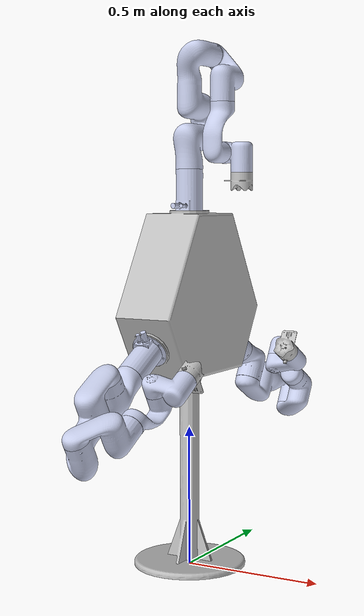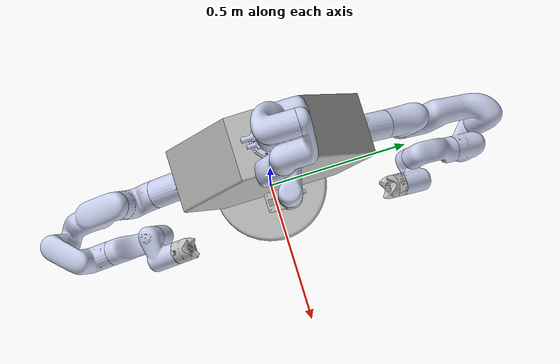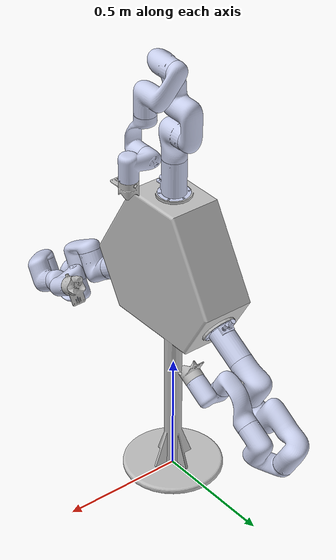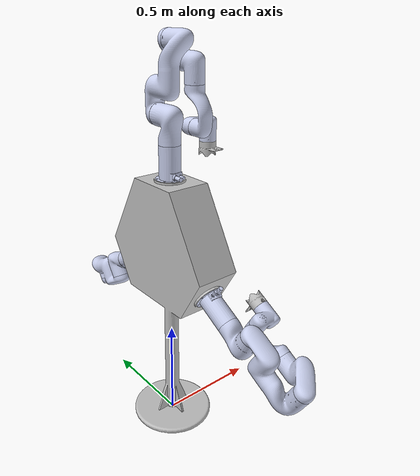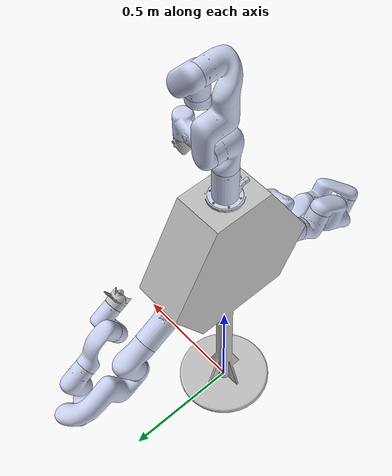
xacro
<?xml version="1.0" encoding="utf-8"?>

<robot name="fullbot" xmlns:xacro="http://www.ros.org/wiki/xacro">

  <gazebo>
    <plugin name="gazebo_ros_control" filename="libgazebo_ros_control.so">
      <robotNamespace>/</robotNamespace>
      <robotSimType>gazebo_ros_control/DefaultRobotHWSim</robotSimType>
    </plugin>
    <plugin name="fullbot_wheel_controller" filename="libgazebo_ros_planar_move.so">
      <commandTopic>cmd_vel</commandTopic>
      <odometryTopic>odom</odometryTopic>
      <odometryFrame>odom</odometryFrame>
      <odometryRate>30.0</odometryRate>
      <robotBaseFrame>chassis</robotBaseFrame>
    </plugin>
  </gazebo>

  <link
    name="base_link">
    <inertial>
      <origin
        xyz="-0.00281805059644907 0.00130056841626421 0.90172021367832"
        rpy="0 0 0" />
      <mass
        value="70.8376486973613" />
      <inertia
        ixx="3.5026387525153"
        ixy="-3.09893754296513E-10"
        ixz="0.000336204370109459"
        iyy="2.07462491441494"
        iyz="-7.77501017045212E-10"
        izz="1.81501039729664" />
    </inertial>
    <visual>
      <origin
        xyz="0 0 0"
        rpy="0 0 0" />
      <geometry>
        <mesh
          filename="package://fullbot/meshes/base_link.STL" />
      </geometry>
      <material
        name="">
        <color
          rgba="0.752941176470588 0.752941176470588 0.752941176470588 1" />
      </material>
    </visual>
    <collision>
      <origin
        xyz="0 0 0"
        rpy="0 0 0" />
      <geometry>
        <mesh
          filename="package://fullbot/meshes/base_link.STL" />
      </geometry>
    </collision>
  </link>
  <link
    name="link0_up">
    <inertial>
      <origin
        xyz="0.0015235 -9.2098E-05 0.072171"
        rpy="0 0 0" />
      <mass
        value="1.1501" />
      <inertia
        ixx="0.003053"
        ixy="7.4972E-06"
        ixz="7.8812E-05"
        iyy="0.003154"
        iyz="-4.773E-06"
        izz="0.001496" />
    </inertial>
    <visual>
      <origin
        xyz="0 0 0"
        rpy="0 0 0" />
      <geometry>
        <mesh
          filename="package://fullbot/meshes/link0_up.STL" />
      </geometry>
      <material
        name="">
        <color
          rgba="0.79216 0.81961 0.93333 1" />
      </material>
    </visual>
    <collision>
      <origin
        xyz="0 0 0"
        rpy="0 0 0" />
      <geometry>
        <mesh
          filename="package://fullbot/meshes/link0_up.STL" />
      </geometry>
    </collision>
  </link>
  <joint
    name="joint0_up"
    type="fixed">
    <origin
      xyz="0 0 1.2629"
      rpy="0 0 -1.5708" />
    <parent
      link="base_link" />
    <child
      link="link0_up" />
    <axis
      xyz="0 0 0" />
  </joint>
  <link
    name="link1_up">
    <inertial>
      <origin
        xyz="-0.0063511653118558 0.000207381647010473 0.0933560245185359"
        rpy="0 0 0" />
      <mass
        value="1.3256364074878" />
      <inertia
        ixx="0.00337516344067471"
        ixy="2.91047495398255E-06"
        ixz="0.000390263321422471"
        iyy="0.0039707875530841"
        iyz="-7.74618991821578E-06"
        izz="0.00211705553045749" />
    </inertial>
    <visual>
      <origin
        xyz="0 0 0"
        rpy="0 0 0" />
      <geometry>
        <mesh
          filename="package://fullbot/meshes/link1_up.STL" />
      </geometry>
      <material
        name="">
        <color
          rgba="0.792156862745098 0.819607843137255 0.933333333333333 1" />
      </material>
    </visual>
    <collision>
      <origin
        xyz="0 0 0"
        rpy="0 0 0" />
      <geometry>
        <mesh
          filename="package://fullbot/meshes/link1_up.STL" />
      </geometry>
    </collision>
  </link>
  <joint
    name="joint1_up"
    type="revolute">
    <origin
      xyz="0 0 0.1448"
      rpy="0 0 0" />
    <parent
      link="link0_up" />
    <child
      link="link1_up" />
    <axis
      xyz="0 0 1" />
    <limit
      lower="-6.28"
      upper="6.28"
      effort="20"
      velocity="1.5" />
  </joint>
  <link
    name="link2_up">
    <inertial>
      <origin
        xyz="-0.164334922175456 -0.0131391380189071 -0.0386527377791693"
        rpy="0 0 0" />
      <mass
        value="2.69348731441247" />
      <inertia
        ixx="0.00426310623774934"
        ixy="-0.00277535500543395"
        ixz="-0.000798338261530704"
        iyy="0.0150045970572789"
        iyz="0.000100430735697421"
        izz="0.0156052703291197" />
    </inertial>
    <visual>
      <origin
        xyz="0 0 0"
        rpy="0 0 0" />
      <geometry>
        <mesh
          filename="package://fullbot/meshes/link2_up.STL" />
      </geometry>
      <material
        name="">
        <color
          rgba="0.792156862745098 0.819607843137255 0.933333333333333 1" />
      </material>
    </visual>
    <collision>
      <origin
        xyz="0 0 0"
        rpy="0 0 0" />
      <geometry>
        <mesh
          filename="package://fullbot/meshes/link2_up.STL" />
      </geometry>
    </collision>
  </link>
  <joint
    name="joint2_up"
    type="revolute">
    <origin
      xyz="-0.065295 0.00034902 0.122"
      rpy="3.1416 1.5708 0" />
    <parent
      link="link1_up" />
    <child
      link="link2_up" />
    <axis
      xyz="0 0 1" />
    <limit
      lower="-2.05"
      upper="2.09"
      effort="20"
      velocity="1.5" />
  </joint>
  <link
    name="link3_up">
    <inertial>
      <origin
        xyz="0.0790017026576337 -0.0622013013556818 -0.0189186889395293"
        rpy="0 0 0" />
      <mass
        value="1.30253510106472" />
      <inertia
        ixx="0.00393747848651755"
        ixy="0.00136510222638933"
        ixz="0.00159608028913008"
        iyy="0.00525344165407256"
        iyz="-0.000920518752882782"
        izz="0.00455361194720345" />
    </inertial>
    <visual>
      <origin
        xyz="0 0 0"
        rpy="0 0 0" />
      <geometry>
        <mesh
          filename="package://fullbot/meshes/link3_up.STL" />
      </geometry>
      <material
        name="">
        <color
          rgba="0.792156862745098 0.819607843137255 0.933333333333333 1" />
      </material>
    </visual>
    <collision>
      <origin
        xyz="0 0 0"
        rpy="0 0 0" />
      <geometry>
        <mesh
          filename="package://fullbot/meshes/link3_up.STL" />
      </geometry>
    </collision>
  </link>
  <joint
    name="joint3_up"
    type="revolute">
    <origin
      xyz="-0.2859 -0.053313 -0.0083026"
      rpy="0 0 0" />
    <parent
      link="link2_up" />
    <child
      link="link3_up" />
    <axis
      xyz="0 0 1" />
    <limit
      lower="-3.92"
      upper="0.19"
      effort="20"
      velocity="1.5" />
  </joint>
  <link
    name="link4_up">
    <inertial>
      <origin
        xyz="0.0321807687354634 -0.00025917554824062 0.107627187331175"
        rpy="0 0 0" />
      <mass
        value="0.789560351493029" />
      <inertia
        ixx="0.00404949168648296"
        ixy="-3.36598707087041E-06"
        ixz="-0.00099079876639351"
        iyy="0.00449572325717299"
        iyz="-2.2965154074987E-06"
        izz="0.00105175547833875" />
    </inertial>
    <visual>
      <origin
        xyz="0 0 0"
        rpy="0 0 0" />
      <geometry>
        <mesh
          filename="package://fullbot/meshes/link4_up.STL" />
      </geometry>
      <material
        name="">
        <color
          rgba="0.792156862745098 0.819607843137255 0.933333333333333 1" />
      </material>
    </visual>
    <collision>
      <origin
        xyz="0 0 0"
        rpy="0 0 0" />
      <geometry>
        <mesh
          filename="package://fullbot/meshes/link4_up.STL" />
      </geometry>
    </collision>
  </link>
  <joint
    name="joint4_up"
    type="revolute">
    <origin
      xyz="0.15917 -0.077751 -0.057495"
      rpy="0 1.5708 0" />
    <parent
      link="link3_up" />
    <child
      link="link4_up" />
    <axis
      xyz="0 0 1" />
    <limit
      lower="-6.28"
      upper="6.28"
      effort="20"
      velocity="1.5" />
  </joint>
  <link
    name="link5_up">
    <inertial>
      <origin
        xyz="0.0467464429721704 -0.00940639676845523 -0.0231013060407902"
        rpy="0 0 0" />
      <mass
        value="0.723051769580643" />
      <inertia
        ixx="0.000793027726972335"
        ixy="0.000197964210793357"
        ixz="-0.000254464226983087"
        iyy="0.00148592083068407"
        iyz="5.97819367646225E-05"
        izz="0.00164704279225573" />
    </inertial>
    <visual>
      <origin
        xyz="0 0 0"
        rpy="0 0 0" />
      <geometry>
        <mesh
          filename="package://fullbot/meshes/link5_up.STL" />
      </geometry>
      <material
        name="">
        <color
          rgba="0.792156862745098 0.819607843137255 0.933333333333333 1" />
      </material>
    </visual>
    <collision>
      <origin
        xyz="0 0 0"
        rpy="0 0 0" />
      <geometry>
        <mesh
          filename="package://fullbot/meshes/link5_up.STL" />
      </geometry>
    </collision>
  </link>
  <joint
    name="joint5_up"
    type="revolute">
    <origin
      xyz="0.014748 -0.00043612 0.183"
      rpy="-1.5708 0 -1.5708" />
    <parent
      link="link4_up" />
    <child
      link="link5_up" />
    <axis
      xyz="0 0 -1" />
    <limit
      lower="-1.69"
      upper="3.14"
      effort="20"
      velocity="1.5" />
  </joint>
  <link
    name="link6_up">
    <inertial>
      <origin
        xyz="-0.00127764071195329 7.89251108912481E-09 0.0348924628163476"
        rpy="0 0 0" />
      <mass
        value="0.240703496519078" />
      <inertia
        ixx="0.000111819933042724"
        ixy="1.06441768274538E-12"
        ixz="3.17569406177314E-07"
        iyy="0.000124185578330655"
        iyz="-2.44652552338508E-11"
        izz="0.000199479046718238" />
    </inertial>
    <visual>
      <origin
        xyz="0 0 0"
        rpy="0 0 0" />
      <geometry>
        <mesh
          filename="package://fullbot/meshes/link6_up.STL" />
      </geometry>
      <material
        name="">
        <color
          rgba="0.752941176470588 0.752941176470588 0.752941176470588 1" />
      </material>
    </visual>
    <collision>
      <origin
        xyz="0 0 0"
        rpy="0 0 0" />
      <geometry>
        <mesh
          filename="package://fullbot/meshes/link6_up.STL" />
      </geometry>
    </collision>
  </link>
  <joint
    name="joint6_up"
    type="revolute">
    <origin
      xyz="0.075873 -0.058524 -0.014339"
      rpy="1.5708 1.5708 0" />
    <parent
      link="link5_up" />
    <child
      link="link6_up" />
    <axis
      xyz="0 0 1" />
    <limit
      lower="-6.28"
      upper="6.28"
      effort="20"
      velocity="1.5" />
  </joint>
  <link
    name="link0_right">
    <inertial>
      <origin
        xyz="0.00152352214909268 -9.20950558262901E-05 0.0721709833940649"
        rpy="0 0 0" />
      <mass
        value="1.15012354839417" />
      <inertia
        ixx="0.00305297729491234"
        ixy="7.49727624531085E-06"
        ixz="7.8811653611199E-05"
        iyy="0.00315399502526908"
        iyz="-4.77312392810153E-06"
        izz="0.00149595458411752" />
    </inertial>
    <visual>
      <origin
        xyz="0 0 0"
        rpy="0 0 0" />
      <geometry>
        <mesh
          filename="package://fullbot/meshes/link0_right.STL" />
      </geometry>
      <material
        name="">
        <color
          rgba="0.792156862745098 0.819607843137255 0.933333333333333 1" />
      </material>
    </visual>
    <collision>
      <origin
        xyz="0 0 0"
        rpy="0 0 0" />
      <geometry>
        <mesh
          filename="package://fullbot/meshes/link0_right.STL" />
      </geometry>
    </collision>
  </link>
  <joint
    name="joint0_right"
    type="fixed">
    <origin
      xyz="0 0.262500000000021 0.808253175473089"
      rpy="3.14159265358979 -1.04719755119661 1.5707963267949" />
    <parent
      link="base_link" />
    <child
      link="link0_right" />
    <axis
      xyz="0 0 0" />
  </joint>
  <link
    name="link1_right">
    <inertial>
      <origin
        xyz="-0.00635141038711484 0.000207534921337451 0.0933560223181532"
        rpy="0 0 0" />
      <mass
        value="1.32562534805268" />
      <inertia
        ixx="0.0033751569034854"
        ixy="2.90184699872975E-06"
        ixz="0.000390274835452127"
        iyy="0.00397076269428928"
        iyz="-7.74687080996628E-06"
        izz="0.00211702052844463" />
    </inertial>
    <visual>
      <origin
        xyz="0 0 0"
        rpy="0 0 0" />
      <geometry>
        <mesh
          filename="package://fullbot/meshes/link1_right.STL" />
      </geometry>
      <material
        name="">
        <color
          rgba="0.792156862745098 0.819607843137255 0.933333333333333 1" />
      </material>
    </visual>
    <collision>
      <origin
        xyz="0 0 0"
        rpy="0 0 0" />
      <geometry>
        <mesh
          filename="package://fullbot/meshes/link1_right.STL" />
      </geometry>
    </collision>
  </link>
  <joint
    name="joint1_right"
    type="revolute">
    <origin
      xyz="0 0 0.1448"
      rpy="0 0 0" />
    <parent
      link="link0_right" />
    <child
      link="link1_right" />
    <axis
      xyz="0 0 1" />
    <limit
      lower="-6.28"
      upper="6.28"
      effort="20"
      velocity="1.5" />
  </joint>
  <link
    name="link2_right">
    <inertial>
      <origin
        xyz="-0.164337985161048 -0.0131393685703512 -0.0386544729786384"
        rpy="0 0 0" />
      <mass
        value="2.69362838096021" />
      <inertia
        ixx="0.00426335070454304"
        ixy="-0.00277555236003664"
        ixz="-0.000798532633310513"
        iyy="0.0150051670245593"
        iyz="0.000100373269271408"
        izz="0.0156058685529561" />
    </inertial>
    <visual>
      <origin
        xyz="0 0 0"
        rpy="0 0 0" />
      <geometry>
        <mesh
          filename="package://fullbot/meshes/link2_right.STL" />
      </geometry>
      <material
        name="">
        <color
          rgba="0.792156862745098 0.819607843137255 0.933333333333333 1" />
      </material>
    </visual>
    <collision>
      <origin
        xyz="0 0 0"
        rpy="0 0 0" />
      <geometry>
        <mesh
          filename="package://fullbot/meshes/link2_right.STL" />
      </geometry>
    </collision>
  </link>
  <joint
    name="joint2_right"
    type="revolute">
    <origin
      xyz="-0.065295 0.00034902 0.122"
      rpy="3.1416 1.5708 0" />
    <parent
      link="link1_right" />
    <child
      link="link2_right" />
    <axis
      xyz="0 0 1" />
    <limit
      lower="-2.05"
      upper="2.09"
      effort="20"
      velocity="1.5" />
  </joint>
  <link
    name="link3_right">
    <inertial>
      <origin
        xyz="0.0790018467474999 -0.0622013835327156 -0.0189188081086681"
        rpy="0 0 0" />
      <mass
        value="1.30253291173427" />
      <inertia
        ixx="0.00393746472517653"
        ixy="0.00136509457478538"
        ixz="0.00159605824936344"
        iyy="0.00525341640271265"
        iyz="-0.000920517395001331"
        izz="0.00455360703799699" />
    </inertial>
    <visual>
      <origin
        xyz="0 0 0"
        rpy="0 0 0" />
      <geometry>
        <mesh
          filename="package://fullbot/meshes/link3_right.STL" />
      </geometry>
      <material
        name="">
        <color
          rgba="0.792156862745098 0.819607843137255 0.933333333333333 1" />
      </material>
    </visual>
    <collision>
      <origin
        xyz="0 0 0"
        rpy="0 0 0" />
      <geometry>
        <mesh
          filename="package://fullbot/meshes/link3_right.STL" />
      </geometry>
    </collision>
  </link>
  <joint
    name="joint3_right"
    type="revolute">
    <origin
      xyz="-0.2859 -0.053313 -0.0083026"
      rpy="0 0 0" />
    <parent
      link="link2_right" />
    <child
      link="link3_right" />
    <axis
      xyz="0 0 1" />
    <limit
      lower="-3.92"
      upper="0.19"
      effort="20"
      velocity="1.5" />
  </joint>
  <link
    name="link4_right">
    <inertial>
      <origin
        xyz="0.0321808159995989 -0.000259192543237335 0.107627165980801"
        rpy="0 0 0" />
      <mass
        value="0.78956108124552" />
      <inertia
        ixx="0.00404951021883878"
        ixy="-3.3674543336446E-06"
        ixz="-0.000990810460485379"
        iyy="0.00449575360734708"
        iyz="-2.29158571071361E-06"
        izz="0.00105176344238809" />
    </inertial>
    <visual>
      <origin
        xyz="0 0 0"
        rpy="0 0 0" />
      <geometry>
        <mesh
          filename="package://fullbot/meshes/link4_right.STL" />
      </geometry>
      <material
        name="">
        <color
          rgba="0.792156862745098 0.819607843137255 0.933333333333333 1" />
      </material>
    </visual>
    <collision>
      <origin
        xyz="0 0 0"
        rpy="0 0 0" />
      <geometry>
        <mesh
          filename="package://fullbot/meshes/link4_right.STL" />
      </geometry>
    </collision>
  </link>
  <joint
    name="joint4_right"
    type="revolute">
    <origin
      xyz="0.15917 -0.077751 -0.057495"
      rpy="0 1.5708 0" />
    <parent
      link="link3_right" />
    <child
      link="link4_right" />
    <axis
      xyz="0 0 1" />
    <limit
      lower="-6.28"
      upper="6.28"
      effort="20"
      velocity="1.5" />
  </joint>
  <link
    name="link5_right">
    <inertial>
      <origin
        xyz="0.0467464712720566 -0.00940636520692905 -0.0231013135933531"
        rpy="0 0 0" />
      <mass
        value="0.723053236781345" />
      <inertia
        ixx="0.000793029275563745"
        ixy="0.00019796746165297"
        ixz="-0.000254450161449136"
        iyy="0.00148592048173132"
        iyz="5.97839010606921E-05"
        izz="0.00164706260101592" />
    </inertial>
    <visual>
      <origin
        xyz="0 0 0"
        rpy="0 0 0" />
      <geometry>
        <mesh
          filename="package://fullbot/meshes/link5_right.STL" />
      </geometry>
      <material
        name="">
        <color
          rgba="0.792156862745098 0.819607843137255 0.933333333333333 1" />
      </material>
    </visual>
    <collision>
      <origin
        xyz="0 0 0"
        rpy="0 0 0" />
      <geometry>
        <mesh
          filename="package://fullbot/meshes/link5_right.STL" />
      </geometry>
    </collision>
  </link>
  <joint
    name="joint5_right"
    type="revolute">
    <origin
      xyz="0.014748 -0.00043612 0.183"
      rpy="-1.5708 0 -1.5708" />
    <parent
      link="link4_right" />
    <child
      link="link5_right" />
    <axis
      xyz="0 0 -1" />
    <limit
      lower="-1.69"
      upper="3.14"
      effort="20"
      velocity="1.5" />
  </joint>
  <link
    name="link6_right">
    <inertial>
      <origin
        xyz="-0.00127764709875855 8.16060202746272E-09 0.0348924616310335"
        rpy="0 0 0" />
      <mass
        value="0.240703470193428" />
      <inertia
        ixx="0.000111819928166232"
        ixy="-8.5304557524986E-12"
        ixz="3.17582815697291E-07"
        iyy="0.000124185592316452"
        iyz="-2.14504240040412E-11"
        izz="0.000199479022123197" />
    </inertial>
    <visual>
      <origin
        xyz="0 0 0"
        rpy="0 0 0" />
      <geometry>
        <mesh
          filename="package://fullbot/meshes/link6_right.STL" />
      </geometry>
      <material
        name="">
        <color
          rgba="0.752941176470588 0.752941176470588 0.752941176470588 1" />
      </material>
    </visual>
    <collision>
      <origin
        xyz="0 0 0"
        rpy="0 0 0" />
      <geometry>
        <mesh
          filename="package://fullbot/meshes/link6_right.STL" />
      </geometry>
    </collision>
  </link>
  <joint
    name="joint6_right"
    type="revolute">
    <origin
      xyz="0.075873 -0.058524 -0.014339"
      rpy="1.5708 1.5708 0" />
    <parent
      link="link5_right" />
    <child
      link="link6_right" />
    <axis
      xyz="0 0 1" />
    <limit
      lower="-6.28"
      upper="6.28"
      effort="20"
      velocity="1.5" />
  </joint>
  <link
    name="link0_left">
    <inertial>
      <origin
        xyz="-0.00152352228347186 9.20948264806331E-05 0.0721709830015318"
        rpy="0 0 0" />
      <mass
        value="1.15012353923379" />
      <inertia
        ixx="0.00305297726264137"
        ixy="7.49728091574788E-06"
        ixz="-7.88116451994899E-05"
        iyy="0.00315399499788005"
        iyz="4.77313793260606E-06"
        izz="0.00149595457246201" />
    </inertial>
    <visual>
      <origin
        xyz="0 0 0"
        rpy="0 0 0" />
      <geometry>
        <mesh
          filename="package://fullbot/meshes/link0_left.STL" />
      </geometry>
      <material
        name="">
        <color
          rgba="0.792156862745098 0.819607843137255 0.933333333333333 1" />
      </material>
    </visual>
    <collision>
      <origin
        xyz="0 0 0"
        rpy="0 0 0" />
      <geometry>
        <mesh
          filename="package://fullbot/meshes/link0_left.STL" />
      </geometry>
    </collision>
  </link>
  <joint
    name="joint0_left"
    type="fixed">
    <origin
      xyz="0 -0.262500000000018 0.808253175473086"
      rpy="3.14159265358979 1.04719755119659 1.57079632679489" />
    <parent
      link="base_link" />
    <child
      link="link0_left" />
    <axis
      xyz="0 0 0" />
  </joint>
  <link
    name="link1_left">
    <inertial>
      <origin
        xyz="-0.00635132541827643 0.000207433439637812 0.0933560224157137"
        rpy="0 0 0" />
      <mass
        value="1.32563223880842" />
      <inertia
        ixx="0.0033752021374132"
        ixy="2.88747662063124E-06"
        ixz="0.000390243275931501"
        iyy="0.00397075692793722"
        iyz="-7.76736476127417E-06"
        izz="0.0021170422993842" />
    </inertial>
    <visual>
      <origin
        xyz="0 0 0"
        rpy="0 0 0" />
      <geometry>
        <mesh
          filename="package://fullbot/meshes/link1_left.STL" />
      </geometry>
      <material
        name="">
        <color
          rgba="0.792156862745098 0.819607843137255 0.933333333333333 1" />
      </material>
    </visual>
    <collision>
      <origin
        xyz="0 0 0"
        rpy="0 0 0" />
      <geometry>
        <mesh
          filename="package://fullbot/meshes/link1_left.STL" />
      </geometry>
    </collision>
  </link>
  <joint
    name="joint1_left"
    type="revolute">
    <origin
      xyz="0 0 0.1448"
      rpy="0 0 0" />
    <parent
      link="link0_left" />
    <child
      link="link1_left" />
    <axis
      xyz="0 0 1" />
    <limit
      lower="-6.28"
      upper="6.28"
      effort="20"
      velocity="1.5" />
  </joint>
  <link
    name="link2_left">
    <inertial>
      <origin
        xyz="-0.164335653200961 -0.0131391438496397 -0.0386534541310815"
        rpy="0 0 0" />
      <mass
        value="2.693519969393" />
      <inertia
        ixx="0.00426316968491273"
        ixy="-0.00277539275843287"
        ixz="-0.000798412755260659"
        iyy="0.015004913484326"
        iyz="0.000100414305662904"
        izz="0.0156055322063192" />
    </inertial>
    <visual>
      <origin
        xyz="0 0 0"
        rpy="0 0 0" />
      <geometry>
        <mesh
          filename="package://fullbot/meshes/link2_left.STL" />
      </geometry>
      <material
        name="">
        <color
          rgba="0.792156862745098 0.819607843137255 0.933333333333333 1" />
      </material>
    </visual>
    <collision>
      <origin
        xyz="0 0 0"
        rpy="0 0 0" />
      <geometry>
        <mesh
          filename="package://fullbot/meshes/link2_left.STL" />
      </geometry>
    </collision>
  </link>
  <joint
    name="joint2_left"
    type="revolute">
    <origin
      xyz="-0.065295 0.00034902 0.122"
      rpy="3.1416 1.5708 0" />
    <parent
      link="link1_left" />
    <child
      link="link2_left" />
    <axis
      xyz="0 0 1" />
    <limit
      lower="-2.05"
      upper="2.09"
      effort="20"
      velocity="1.5" />
  </joint>
  <link
    name="link3_left">
    <inertial>
      <origin
        xyz="0.0790016512060432 -0.0622011862834298 -0.0189187307620943"
        rpy="0 0 0" />
      <mass
        value="1.30253713018814" />
      <inertia
        ixx="0.00393752557798942"
        ixy="0.00136512084598024"
        ixz="0.00159609045475645"
        iyy="0.00525350026062385"
        iyz="-0.000920532713824777"
        izz="0.00455371583746519" />
    </inertial>
    <visual>
      <origin
        xyz="0 0 0"
        rpy="0 0 0" />
      <geometry>
        <mesh
          filename="package://fullbot/meshes/link3_left.STL" />
      </geometry>
      <material
        name="">
        <color
          rgba="0.792156862745098 0.819607843137255 0.933333333333333 1" />
      </material>
    </visual>
    <collision>
      <origin
        xyz="0 0 0"
        rpy="0 0 0" />
      <geometry>
        <mesh
          filename="package://fullbot/meshes/link3_left.STL" />
      </geometry>
    </collision>
  </link>
  <joint
    name="joint3_left"
    type="revolute">
    <origin
      xyz="-0.2859 -0.053313 -0.0083026"
      rpy="0 0 0" />
    <parent
      link="link2_left" />
    <child
      link="link3_left" />
    <axis
      xyz="0 0 1" />
    <limit
      lower="-3.92"
      upper="0.19"
      effort="20"
      velocity="1.5" />
  </joint>
  <link
    name="link4_left">
    <inertial>
      <origin
        xyz="0.0321813918409148 -0.000259353515606797 0.107627755673519"
        rpy="0 0 0" />
      <mass
        value="0.789550324066767" />
      <inertia
        ixx="0.00404948831293703"
        ixy="-3.37071367934127E-06"
        ixz="-0.000990801773245661"
        iyy="0.00449572527498313"
        iyz="-2.29509968742282E-06"
        izz="0.00105175433912365" />
    </inertial>
    <visual>
      <origin
        xyz="0 0 0"
        rpy="0 0 0" />
      <geometry>
        <mesh
          filename="package://fullbot/meshes/link4_left.STL" />
      </geometry>
      <material
        name="">
        <color
          rgba="0.792156862745098 0.819607843137255 0.933333333333333 1" />
      </material>
    </visual>
    <collision>
      <origin
        xyz="0 0 0"
        rpy="0 0 0" />
      <geometry>
        <mesh
          filename="package://fullbot/meshes/link4_left.STL" />
      </geometry>
    </collision>
  </link>
  <joint
    name="joint4_left"
    type="revolute">
    <origin
      xyz="0.15917 -0.077751 -0.057495"
      rpy="0 1.5708 0" />
    <parent
      link="link3_left" />
    <child
      link="link4_left" />
    <axis
      xyz="0 0 1" />
    <limit
      lower="-6.28"
      upper="6.28"
      effort="20"
      velocity="1.5" />
  </joint>
  <link
    name="link5_left">
    <inertial>
      <origin
        xyz="0.0467460587567171 -0.0094063461555137 -0.0231014499120238"
        rpy="0 0 0" />
      <mass
        value="0.723052791881536" />
      <inertia
        ixx="0.000793040035769921"
        ixy="0.000197992610855098"
        ixz="-0.000254454983145896"
        iyy="0.00148594871876037"
        iyz="5.97820535578688E-05"
        izz="0.00164710089968391" />
    </inertial>
    <visual>
      <origin
        xyz="0 0 0"
        rpy="0 0 0" />
      <geometry>
        <mesh
          filename="package://fullbot/meshes/link5_left.STL" />
      </geometry>
      <material
        name="">
        <color
          rgba="0.792156862745098 0.819607843137255 0.933333333333333 1" />
      </material>
    </visual>
    <collision>
      <origin
        xyz="0 0 0"
        rpy="0 0 0" />
      <geometry>
        <mesh
          filename="package://fullbot/meshes/link5_left.STL" />
      </geometry>
    </collision>
  </link>
  <joint
    name="joint5_left"
    type="revolute">
    <origin
      xyz="0.014748 -0.00043612 0.183"
      rpy="-1.5708 0 -1.5708" />
    <parent
      link="link4_left" />
    <child
      link="link5_left" />
    <axis
      xyz="0 0 -1" />
    <limit
      lower="-1.69"
      upper="3.14"
      effort="20"
      velocity="1.5" />
  </joint>
  <link
    name="link6_left">
    <inertial>
      <origin
        xyz="-0.00127763577348217 7.93220825134888E-09 0.0348924624099836"
        rpy="0 0 0" />
      <mass
        value="0.24070347329952" />
      <inertia
        ixx="0.000111819940943311"
        ixy="-1.15110725036355E-11"
        ixz="3.17554848775727E-07"
        iyy="0.0001241855941227"
        iyz="-3.87077223997555E-11"
        izz="0.00019947903857224" />
    </inertial>
    <visual>
      <origin
        xyz="0 0 0"
        rpy="0 0 0" />
      <geometry>
        <mesh
          filename="package://fullbot/meshes/link6_left.STL" />
      </geometry>
      <material
        name="">
        <color
          rgba="0.752941176470588 0.752941176470588 0.752941176470588 1" />
      </material>
    </visual>
    <collision>
      <origin
        xyz="0 0 0"
        rpy="0 0 0" />
      <geometry>
        <mesh
          filename="package://fullbot/meshes/link6_left.STL" />
      </geometry>
    </collision>
  </link>
  <joint
    name="joint6_left"
    type="revolute">
    <origin
      xyz="0.075873 -0.058524 -0.014339"
      rpy="1.5708 1.5708 0" />
    <parent
      link="link5_left" />
    <child
      link="link6_left" />
    <axis
      xyz="0 0 1" />
    <limit
      lower="-6.28"
      upper="6.28"
      effort="20"
      velocity="1.5" />
  </joint>

    <!-- CHASSIS LINK -->

    <!-- LEFT WHEEL LINK -->

    <!-- RIGHT WHEEL LINK -->

    <!-- CASTER WHEEL LINK -->

  <transmission name="trans1_up">
    <type>transmission_interface/SimpleTransmission</type>
    <joint name="joint1_up">
      <hardwareInterface>hardware_interface/PositionJointInterface</hardwareInterface>
    </joint>
    <actuator name="motor1_up">
      <hardwareInterface>hardware_interface/PositionJointInterface</hardwareInterface>
      <mechanicalReduction>1</mechanicalReduction>
    </actuator>
  </transmission>

  <transmission name="trans2_up">
    <type>transmission_interface/SimpleTransmission</type>
    <joint name="joint2_up">
      <hardwareInterface>hardware_interface/PositionJointInterface</hardwareInterface>
    </joint>
    <actuator name="motor2_up">
      <hardwareInterface>hardware_interface/PositionJointInterface</hardwareInterface>
      <mechanicalReduction>1</mechanicalReduction>
    </actuator>
  </transmission>

  <transmission name="trans3_up">
    <type>transmission_interface/SimpleTransmission</type>
    <joint name="joint3_up">
      <hardwareInterface>hardware_interface/PositionJointInterface</hardwareInterface>
    </joint>
    <actuator name="motor3_up">
      <hardwareInterface>hardware_interface/PositionJointInterface</hardwareInterface>
      <mechanicalReduction>1</mechanicalReduction>
    </actuator>
  </transmission>

  <transmission name="trans4_up">
    <type>transmission_interface/SimpleTransmission</type>
    <joint name="joint4_up">
      <hardwareInterface>hardware_interface/PositionJointInterface</hardwareInterface>
    </joint>
    <actuator name="motor4_up">
      <hardwareInterface>hardware_interface/PositionJointInterface</hardwareInterface>
      <mechanicalReduction>1</mechanicalReduction>
    </actuator>
  </transmission>

  <transmission name="trans5_up">
    <type>transmission_interface/SimpleTransmission</type>
    <joint name="joint5_up">
      <hardwareInterface>hardware_interface/PositionJointInterface</hardwareInterface>
    </joint>
    <actuator name="motor5_up">
      <hardwareInterface>hardware_interface/PositionJointInterface</hardwareInterface>
      <mechanicalReduction>1</mechanicalReduction>
    </actuator>
  </transmission>

  <transmission name="trans6_up">
    <type>transmission_interface/SimpleTransmission</type>
    <joint name="joint6_up">
      <hardwareInterface>hardware_interface/PositionJointInterface</hardwareInterface>
    </joint>
    <actuator name="motor6_up">
      <hardwareInterface>hardware_interface/PositionJointInterface</hardwareInterface>
      <mechanicalReduction>1</mechanicalReduction>
    </actuator>
  </transmission>

  <transmission name="trans1_left">
    <type>transmission_interface/SimpleTransmission</type>
    <joint name="joint1_left">
      <hardwareInterface>hardware_interface/PositionJointInterface</hardwareInterface>
    </joint>
    <actuator name="motor1_left">
      <hardwareInterface>hardware_interface/PositionJointInterface</hardwareInterface>
      <mechanicalReduction>1</mechanicalReduction>
    </actuator>
  </transmission>

  <transmission name="trans2_left">
    <type>transmission_interface/SimpleTransmission</type>
    <joint name="joint2_left">
      <hardwareInterface>hardware_interface/PositionJointInterface</hardwareInterface>
    </joint>
    <actuator name="motor2_left">
      <hardwareInterface>hardware_interface/PositionJointInterface</hardwareInterface>
      <mechanicalReduction>1</mechanicalReduction>
    </actuator>
  </transmission>

  <transmission name="trans3_left">
    <type>transmission_interface/SimpleTransmission</type>
    <joint name="joint3_left">
      <hardwareInterface>hardware_interface/PositionJointInterface</hardwareInterface>
    </joint>
    <actuator name="motor3_left">
      <hardwareInterface>hardware_interface/PositionJointInterface</hardwareInterface>
      <mechanicalReduction>1</mechanicalReduction>
    </actuator>
  </transmission>

  <transmission name="trans4_left">
    <type>transmission_interface/SimpleTransmission</type>
    <joint name="joint4_left">
      <hardwareInterface>hardware_interface/PositionJointInterface</hardwareInterface>
    </joint>
    <actuator name="motor4_left">
      <hardwareInterface>hardware_interface/PositionJointInterface</hardwareInterface>
      <mechanicalReduction>1</mechanicalReduction>
    </actuator>
  </transmission>

  <transmission name="trans5_left">
    <type>transmission_interface/SimpleTransmission</type>
    <joint name="joint5_left">
      <hardwareInterface>hardware_interface/PositionJointInterface</hardwareInterface>
    </joint>
    <actuator name="motor5_left">
      <hardwareInterface>hardware_interface/PositionJointInterface</hardwareInterface>
      <mechanicalReduction>1</mechanicalReduction>
    </actuator>
  </transmission>

  <transmission name="trans6_left">
    <type>transmission_interface/SimpleTransmission</type>
    <joint name="joint6_left">
      <hardwareInterface>hardware_interface/PositionJointInterface</hardwareInterface>
    </joint>
    <actuator name="motor6_left">
      <hardwareInterface>hardware_interface/PositionJointInterface</hardwareInterface>
      <mechanicalReduction>1</mechanicalReduction>
    </actuator>
  </transmission>

  <transmission name="trans1_right">
    <type>transmission_interface/SimpleTransmission</type>
    <joint name="joint1_right">
      <hardwareInterface>hardware_interface/PositionJointInterface</hardwareInterface>
    </joint>
    <actuator name="motor1_right">
      <hardwareInterface>hardware_interface/PositionJointInterface</hardwareInterface>
      <mechanicalReduction>1</mechanicalReduction>
    </actuator>
  </transmission>

  <transmission name="trans2_right">
    <type>transmission_interface/SimpleTransmission</type>
    <joint name="joint2_right">
      <hardwareInterface>hardware_interface/PositionJointInterface</hardwareInterface>
    </joint>
    <actuator name="motor2_right">
      <hardwareInterface>hardware_interface/PositionJointInterface</hardwareInterface>
      <mechanicalReduction>1</mechanicalReduction>
    </actuator>
  </transmission>

  <transmission name="trans3_right">
    <type>transmission_interface/SimpleTransmission</type>
    <joint name="joint3_right">
      <hardwareInterface>hardware_interface/PositionJointInterface</hardwareInterface>
    </joint>
    <actuator name="motor3_right">
      <hardwareInterface>hardware_interface/PositionJointInterface</hardwareInterface>
      <mechanicalReduction>1</mechanicalReduction>
    </actuator>
  </transmission>

  <transmission name="trans4_right">
    <type>transmission_interface/SimpleTransmission</type>
    <joint name="joint4_right">
      <hardwareInterface>hardware_interface/PositionJointInterface</hardwareInterface>
    </joint>
    <actuator name="motor4_right">
      <hardwareInterface>hardware_interface/PositionJointInterface</hardwareInterface>
      <mechanicalReduction>1</mechanicalReduction>
    </actuator>
  </transmission>

  <transmission name="trans5_right">
    <type>transmission_interface/SimpleTransmission</type>
    <joint name="joint5_right">
      <hardwareInterface>hardware_interface/PositionJointInterface</hardwareInterface>
    </joint>
    <actuator name="motor5_right">
      <hardwareInterface>hardware_interface/PositionJointInterface</hardwareInterface>
      <mechanicalReduction>1</mechanicalReduction>
    </actuator>
  </transmission>

  <transmission name="trans6_right">
    <type>transmission_interface/SimpleTransmission</type>
    <joint name="joint6_right">
      <hardwareInterface>hardware_interface/PositionJointInterface</hardwareInterface>
    </joint>
    <actuator name="motor6_right">
      <hardwareInterface>hardware_interface/PositionJointInterface</hardwareInterface>
      <mechanicalReduction>1</mechanicalReduction>
    </actuator>
  </transmission>

  <!-- Wheel Transmission Joints -->

  <transmission name="left_wheel_transmission">
      <type>transmission_interface/SimpleTransmission</type>
      <joint name="left_wheel_joint">
          <hardwareInterface>hardware_interface/EffortJointInterface</hardwareInterface>
      </joint>
      <actuator name="left_wheel_actuator">
          <mechanicalReduction>7</mechanicalReduction>
          <hardwareInterface>hardware_interface/EffortJointInterface</hardwareInterface>
      </actuator>
  </transmission>

  <transmission name="right_wheel_transmission">
      <type>transmission_interface/SimpleTransmission</type>
      <joint name="right_wheel_joint">
          <hardwareInterface>hardware_interface/EffortJointInterface</hardwareInterface>
      </joint>
      <actuator name="right_wheel_actuator">
          <mechanicalReduction>7</mechanicalReduction>
          <hardwareInterface>hardware_interface/EffortJointInterface</hardwareInterface>
      </actuator>
  </transmission>
</robot>
